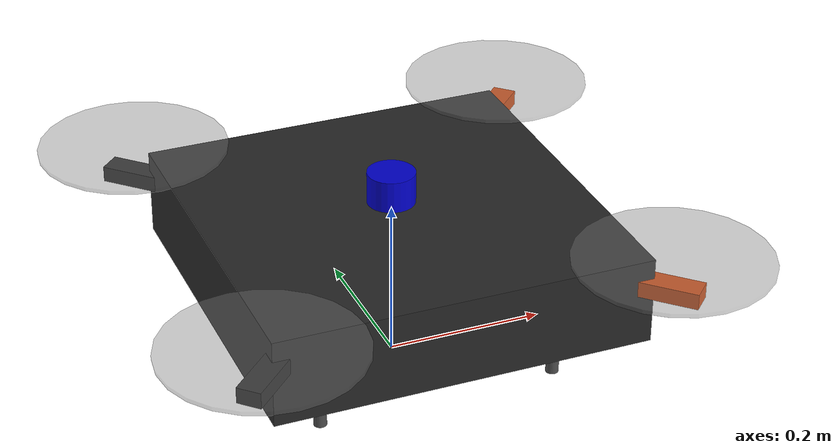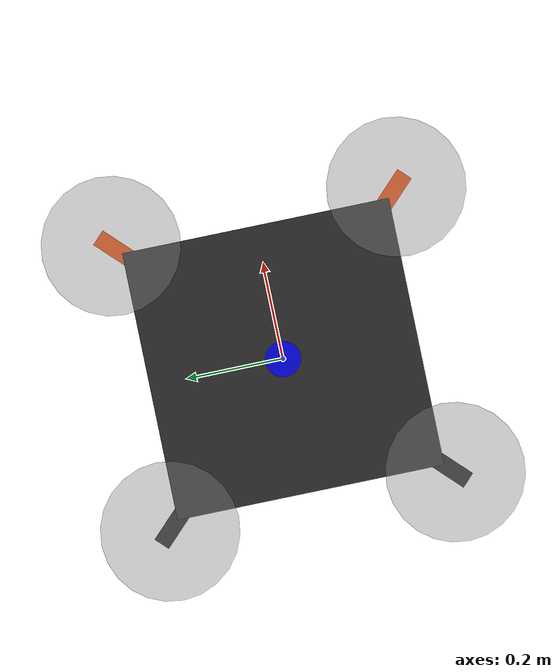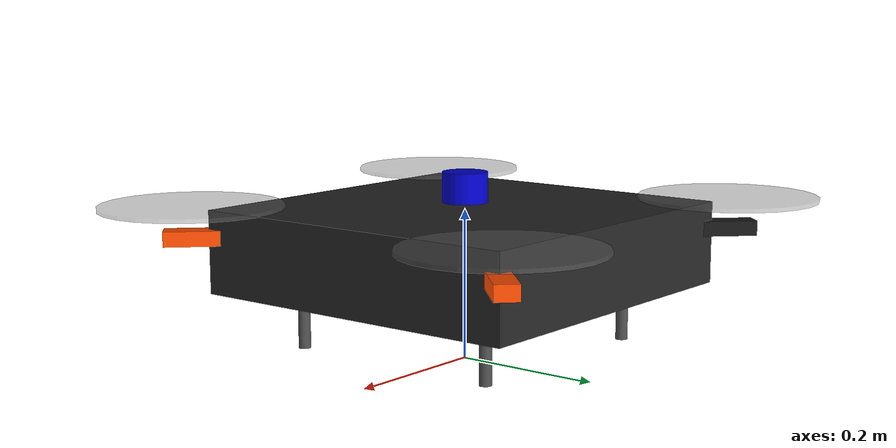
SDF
<?xml version="1.0" ?>
<sdf version="1.6">
  <model name="phoenix_drone">
    <static>false</static>
    <pose>0 0 0.15 0 0 0</pose>

    <!-- ==================== BASE LINK ==================== -->
    <link name="base_link">
      <velocity_decay>
        <linear>0.001</linear>
        <angular>0.004</angular>
      </velocity_decay>
      <inertial>
        <mass>1.5</mass>
        <inertia>
          <ixx>0.0347563</ixx><ixy>0</ixy><ixz>0</ixz>
          <iyy>0.0458929</iyy><iyz>0</iyz>
          <izz>0.0977</izz>
        </inertia>
      </inertial>

      <collision name="body_collision">
        <geometry>
          <box><size>0.47 0.47 0.11</size></box>
        </geometry>
        <surface>
          <friction>
            <ode><mu>0.6</mu><mu2>0.6</mu2></ode>
          </friction>
          <contact>
            <ode>
              <max_vel>1.0</max_vel>
              <min_depth>0.001</min_depth>
            </ode>
          </contact>
        </surface>
      </collision>

      <visual name="body_visual">
        <geometry>
          <box><size>0.47 0.47 0.11</size></box>
        </geometry>
        <material>
          <ambient>0.2 0.2 0.2 1</ambient>
          <diffuse>0.15 0.15 0.15 1</diffuse>
        </material>
      </visual>

      <!-- Arms -->
      <visual name="arm_front_left">
        <pose>0.17 0.17 0.02 0 0 0.785</pose>
        <geometry><box><size>0.30 0.03 0.02</size></box></geometry>
        <material><ambient>1 0.3 0 1</ambient><diffuse>1 0.3 0 1</diffuse></material>
      </visual>
      <visual name="arm_front_right">
        <pose>0.17 -0.17 0.02 0 0 -0.785</pose>
        <geometry><box><size>0.30 0.03 0.02</size></box></geometry>
        <material><ambient>1 0.3 0 1</ambient><diffuse>1 0.3 0 1</diffuse></material>
      </visual>
      <visual name="arm_rear_left">
        <pose>-0.17 0.17 0.02 0 0 -0.785</pose>
        <geometry><box><size>0.30 0.03 0.02</size></box></geometry>
        <material><ambient>0.1 0.1 0.1 1</ambient><diffuse>0.1 0.1 0.1 1</diffuse></material>
      </visual>
      <visual name="arm_rear_right">
        <pose>-0.17 -0.17 0.02 0 0 0.785</pose>
        <geometry><box><size>0.30 0.03 0.02</size></box></geometry>
        <material><ambient>0.1 0.1 0.1 1</ambient><diffuse>0.1 0.1 0.1 1</diffuse></material>
      </visual>

      <!-- Rotor discs (visual only) -->
      <visual name="rotor_fl">
        <pose>0.25 0.25 0.06 0 0 0</pose>
        <geometry><cylinder><radius>0.12</radius><length>0.005</length></cylinder></geometry>
        <material><ambient>0.5 0.5 0.5 0.4</ambient><diffuse>0.5 0.5 0.5 0.4</diffuse></material>
      </visual>
      <visual name="rotor_fr">
        <pose>0.25 -0.25 0.06 0 0 0</pose>
        <geometry><cylinder><radius>0.12</radius><length>0.005</length></cylinder></geometry>
        <material><ambient>0.5 0.5 0.5 0.4</ambient><diffuse>0.5 0.5 0.5 0.4</diffuse></material>
      </visual>
      <visual name="rotor_rl">
        <pose>-0.25 0.25 0.06 0 0 0</pose>
        <geometry><cylinder><radius>0.12</radius><length>0.005</length></cylinder></geometry>
        <material><ambient>0.5 0.5 0.5 0.4</ambient><diffuse>0.5 0.5 0.5 0.4</diffuse></material>
      </visual>
      <visual name="rotor_rr">
        <pose>-0.25 -0.25 0.06 0 0 0</pose>
        <geometry><cylinder><radius>0.12</radius><length>0.005</length></cylinder></geometry>
        <material><ambient>0.5 0.5 0.5 0.4</ambient><diffuse>0.5 0.5 0.5 0.4</diffuse></material>
      </visual>

      <!-- Landing gear legs -->
      <visual name="leg_fl">
        <pose>0.15 0.15 -0.08 0 0 0</pose>
        <geometry><cylinder><radius>0.008</radius><length>0.10</length></cylinder></geometry>
        <material><ambient>0.3 0.3 0.3 1</ambient><diffuse>0.3 0.3 0.3 1</diffuse></material>
      </visual>
      <visual name="leg_fr">
        <pose>0.15 -0.15 -0.08 0 0 0</pose>
        <geometry><cylinder><radius>0.008</radius><length>0.10</length></cylinder></geometry>
        <material><ambient>0.3 0.3 0.3 1</ambient><diffuse>0.3 0.3 0.3 1</diffuse></material>
      </visual>
      <visual name="leg_rl">
        <pose>-0.15 0.15 -0.08 0 0 0</pose>
        <geometry><cylinder><radius>0.008</radius><length>0.10</length></cylinder></geometry>
        <material><ambient>0.3 0.3 0.3 1</ambient><diffuse>0.3 0.3 0.3 1</diffuse></material>
      </visual>
      <visual name="leg_rr">
        <pose>-0.15 -0.15 -0.08 0 0 0</pose>
        <geometry><cylinder><radius>0.008</radius><length>0.10</length></cylinder></geometry>
        <material><ambient>0.3 0.3 0.3 1</ambient><diffuse>0.3 0.3 0.3 1</diffuse></material>
      </visual>

      <visual name="lidar_visual">
        <pose>0 0 0.08 0 0 0</pose>
        <geometry><cylinder><radius>0.03</radius><length>0.04</length></cylinder></geometry>
        <material><ambient>0 0 0.8 1</ambient><diffuse>0 0 0.8 1</diffuse></material>
      </visual>

      <!-- ===== SENSORS (mounted directly on base_link so the
           solver sees one rigid body, not five) ===== -->
      <sensor name="drone_imu" type="imu">
        <always_on>true</always_on>
        <update_rate>100</update_rate>
        <imu>
          <angular_velocity>
            <x><noise type="gaussian"><mean>0</mean><stddev>0.0002</stddev></noise></x>
            <y><noise type="gaussian"><mean>0</mean><stddev>0.0002</stddev></noise></y>
            <z><noise type="gaussian"><mean>0</mean><stddev>0.0002</stddev></noise></z>
          </angular_velocity>
          <linear_acceleration>
            <x><noise type="gaussian"><mean>0</mean><stddev>0.017</stddev></noise></x>
            <y><noise type="gaussian"><mean>0</mean><stddev>0.017</stddev></noise></y>
            <z><noise type="gaussian"><mean>0</mean><stddev>0.017</stddev></noise></z>
          </linear_acceleration>
        </imu>
        <plugin name="imu_plugin" filename="libgazebo_ros_imu_sensor.so">
          <initial_orientation_as_reference>false</initial_orientation_as_reference>
          <frame_name>imu_link</frame_name>
          <ros>
            <namespace>/phoenix</namespace>
            <remapping>~/out:=imu/data</remapping>
          </ros>
        </plugin>
      </sensor>
      <sensor name="downward_camera" type="camera">
        <pose>0 0 -0.06 0 1.5708 0</pose>
        <always_on>true</always_on>
        <update_rate>15</update_rate>
        <visualize>false</visualize>
        <camera>
          <horizontal_fov>1.3962634</horizontal_fov>
          <image><width>640</width><height>480</height><format>R8G8B8</format></image>
          <clip><near>0.1</near><far>100</far></clip>
        </camera>
        <plugin name="camera_plugin" filename="libgazebo_ros_camera.so">
          <ros>
            <namespace>/phoenix</namespace>
          </ros>
          <camera_name>camera</camera_name>
          <frame_name>camera_link</frame_name>
        </plugin>
      </sensor>
      <sensor name="lidar" type="ray">
        <pose>0 0 0.08 0 0 0</pose>
        <always_on>true</always_on>
        <visualize>true</visualize>
        <update_rate>10</update_rate>
        <ray>
          <scan><horizontal>
            <samples>360</samples><resolution>1</resolution>
            <min_angle>-3.14159</min_angle><max_angle>3.14159</max_angle>
          </horizontal></scan>
          <range><min>0.2</min><max>12.0</max><resolution>0.01</resolution></range>
          <noise><type>gaussian</type><mean>0</mean><stddev>0.005</stddev></noise>
        </ray>
        <plugin name="lidar_plugin" filename="libgazebo_ros_ray_sensor.so">
          <ros>
            <namespace>/phoenix</namespace>
            <remapping>~/out:=lidar/scan</remapping>
          </ros>
          <output_type>sensor_msgs/LaserScan</output_type>
          <frame_name>lidar_link</frame_name>
        </plugin>
      </sensor>
      <sensor name="gps_sensor" type="gps">
        <pose>0 0 0.10 0 0 0</pose>
        <always_on>true</always_on>
        <update_rate>10</update_rate>
        <gps>
          <position_sensing>
            <horizontal><noise type="gaussian"><mean>0</mean><stddev>0.2</stddev></noise></horizontal>
            <vertical><noise type="gaussian"><mean>0</mean><stddev>0.4</stddev></noise></vertical>
          </position_sensing>
        </gps>
        <plugin name="gps_plugin" filename="libgazebo_ros_gps_sensor.so">
          <ros>
            <namespace>/phoenix</namespace>
            <remapping>~/out:=gps/fix</remapping>
          </ros>
          <frame_name>gps_link</frame_name>
        </plugin>
      </sensor>
    </link>

    <!-- ==================== GROUND TRUTH ODOMETRY ==================== -->
    <plugin name="p3d_ground_truth" filename="libgazebo_ros_p3d.so">
      <ros>
        <namespace>/phoenix</namespace>
        <remapping>odom:=ground_truth/odom</remapping>
      </ros>
      <body_name>base_link</body_name>
      <frame_name>world</frame_name>
      <update_rate>50</update_rate>
      <xyz_offset>0 0 0</xyz_offset>
      <rpy_offset>0 0 0</rpy_offset>
      <gaussian_noise>0.001</gaussian_noise>
    </plugin>

  </model>
</sdf>
